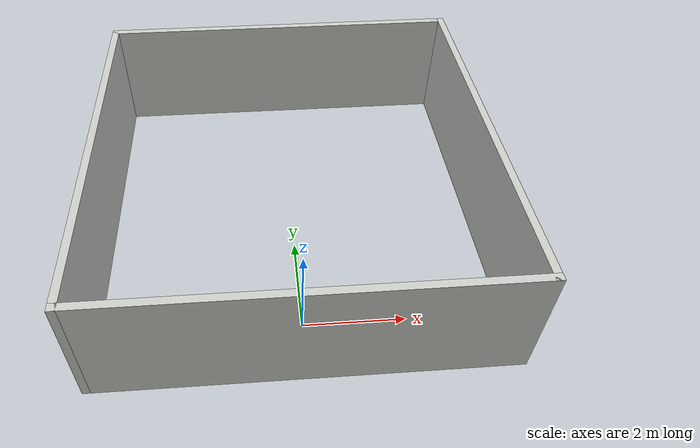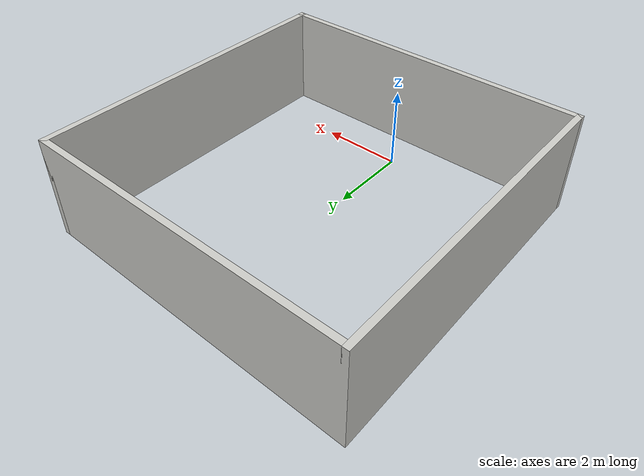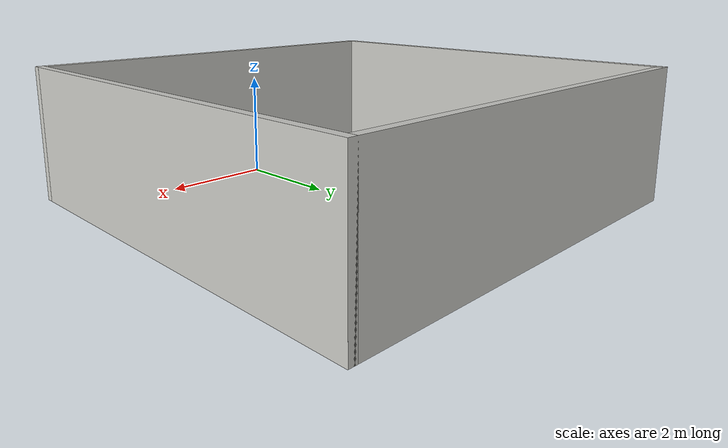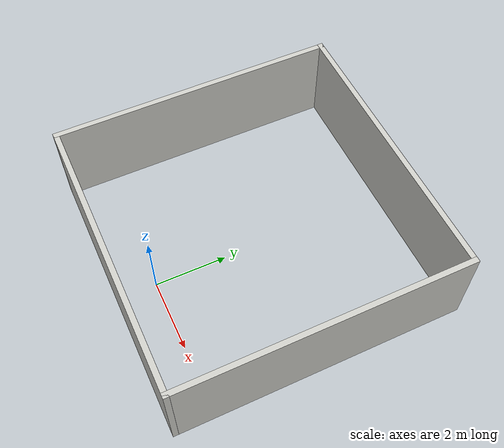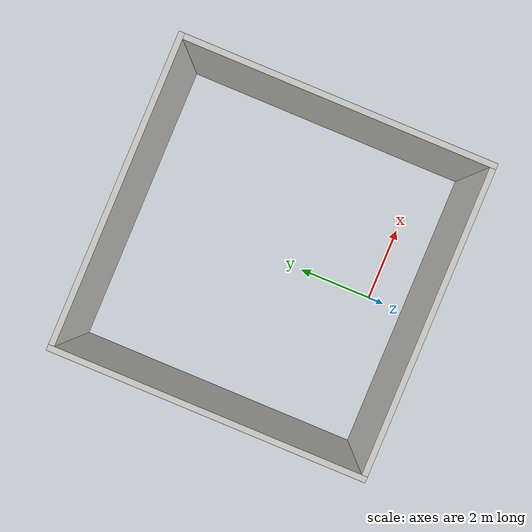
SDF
<?xml version='1.0'?>
<sdf version='1.6'>
  <model name='square_lab'>
    <pose frame=''>0.015 2.885 0 0 -0 0</pose>
    <link name='Wall_0'>
      <collision name='Wall_0_Collision'>
        <geometry>
          <box>
            <size>8 0.15 2.5</size>
          </box>
        </geometry>
        <pose frame=''>0 0 1.25 0 -0 0</pose>
      </collision>
      <visual name='Wall_0_Visual'>
        <pose frame=''>0 0 1.25 0 -0 0</pose>
        <geometry>
          <box>
            <size>8 0.15 2.5</size>
          </box>
        </geometry>
        <material>
          <script>
            <uri>file://media/materials/scripts/gazebo.material</uri>
            <name>Gazebo/CeilingTiled</name>
          </script>
          <ambient>1 1 1 1</ambient>
        </material>
        <meta>
          <layer>0</layer>
        </meta>
      </visual>
      <pose frame=''>-3.925 0 0 0 -0 1.5708</pose>
    </link>
    <link name='Wall_1'>
      <collision name='Wall_1_Collision'>
        <geometry>
          <box>
            <size>8 0.15 2.5</size>
          </box>
        </geometry>
        <pose frame=''>0 0 1.25 0 -0 0</pose>
      </collision>
      <visual name='Wall_1_Visual'>
        <pose frame=''>0 0 1.25 0 -0 0</pose>
        <geometry>
          <box>
            <size>8 0.15 2.5</size>
          </box>
        </geometry>
        <material>
          <script>
            <uri>file://media/materials/scripts/gazebo.material</uri>
            <name>Gazebo/CeilingTiled</name>
          </script>
          <ambient>1 1 1 1</ambient>
        </material>
        <meta>
          <layer>0</layer>
        </meta>
      </visual>
      <pose frame=''>0 3.925 0 0 -0 0</pose>
    </link>
    <link name='Wall_2'>
      <collision name='Wall_2_Collision'>
        <geometry>
          <box>
            <size>8 0.15 2.5</size>
          </box>
        </geometry>
        <pose frame=''>0 0 1.25 0 -0 0</pose>
      </collision>
      <visual name='Wall_2_Visual'>
        <pose frame=''>0 0 1.25 0 -0 0</pose>
        <geometry>
          <box>
            <size>8 0.15 2.5</size>
          </box>
        </geometry>
        <material>
          <script>
            <uri>file://media/materials/scripts/gazebo.material</uri>
            <name>Gazebo/CeilingTiled</name>
          </script>
          <ambient>1 1 1 1</ambient>
        </material>
        <meta>
          <layer>0</layer>
        </meta>
      </visual>
      <pose frame=''>3.925 0 0 0 -0 -1.5708</pose>
    </link>
    <link name='Wall_3'>
      <collision name='Wall_3_Collision'>
        <geometry>
          <box>
            <size>8 0.15 2.5</size>
          </box>
        </geometry>
        <pose frame=''>0 0 1.25 0 -0 0</pose>
      </collision>
      <visual name='Wall_3_Visual'>
        <pose frame=''>0 0 1.25 0 -0 0</pose>
        <geometry>
          <box>
            <size>8 0.15 2.5</size>
          </box>
        </geometry>
        <material>
          <script>
            <uri>file://media/materials/scripts/gazebo.material</uri>
            <name>Gazebo/CeilingTiled</name>
          </script>
          <ambient>1 1 1 1</ambient>
        </material>
        <meta>
          <layer>0</layer>
        </meta>
      </visual>
      <pose frame=''>0 -3.925 0 0 -0 3.14159</pose>
    </link>
    <static>1</static>
  </model>
</sdf>
